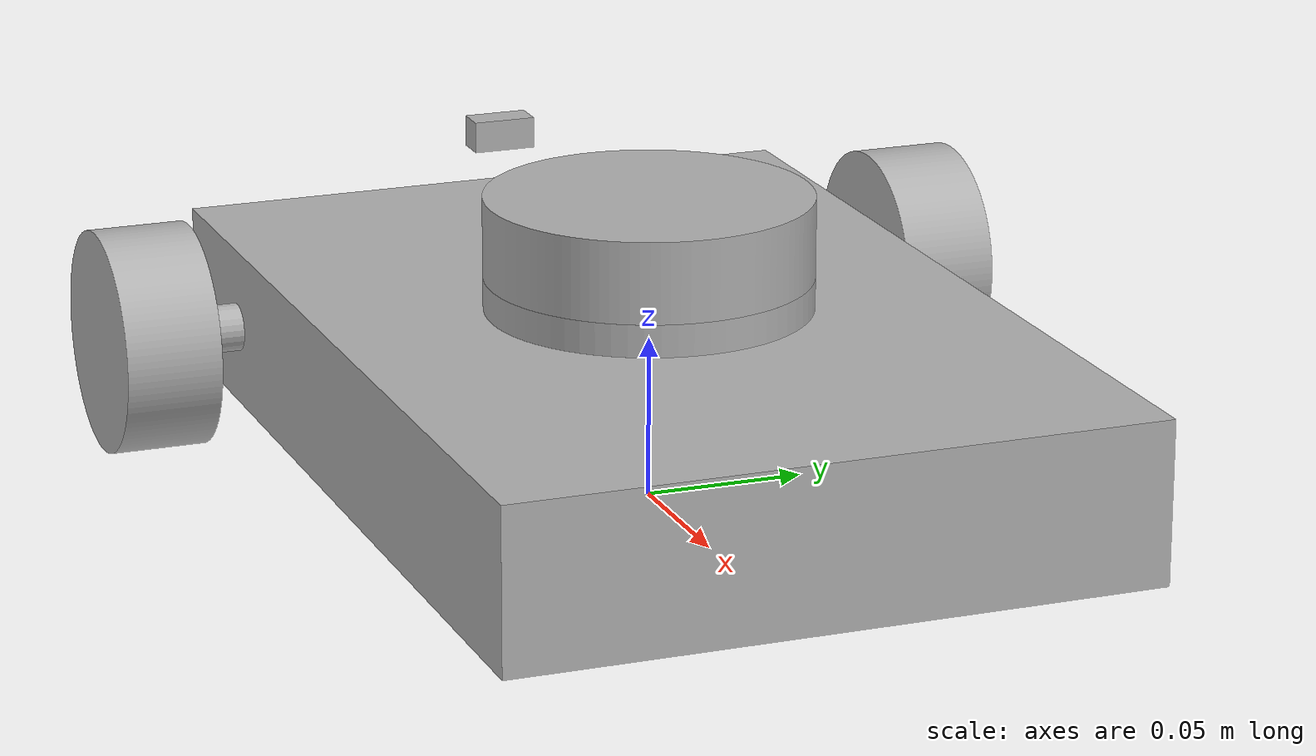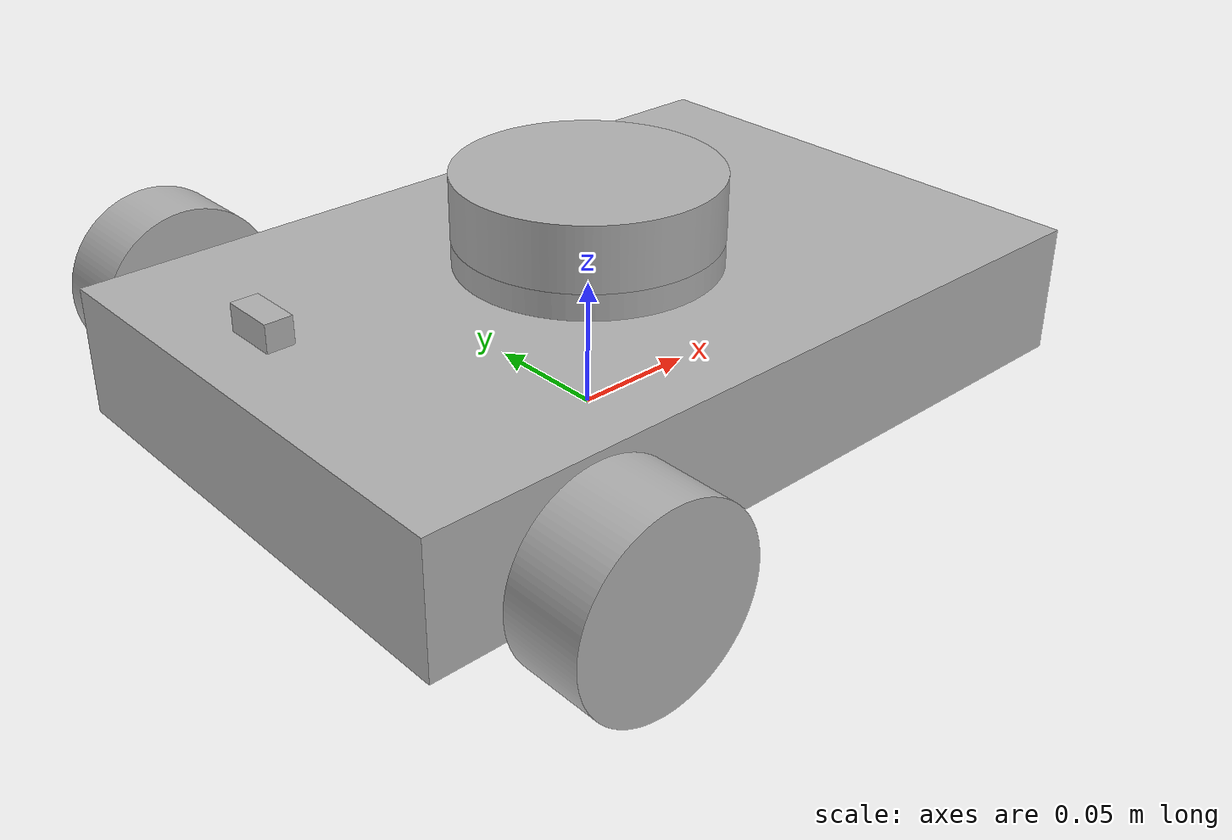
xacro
<?xml version="1.0" ?>
<robot name="differential_robot" xmlns:xacro="http://www.ros.org/wiki/xacro">

<xacro:include filename="$(find differential_robot_description)/urdf/materials.xacro" />
<xacro:include filename="$(find differential_robot_description)/urdf/differential_robot.trans" />
<xacro:include filename="$(find differential_robot_description)/urdf/differential_robot.gazebo" />
<link name="base_link">
  <inertial>
    <origin xyz="-0.00022908232525586226 2.3580301423313124e-17 0.03576360775085303" rpy="0 0 0"/>
    <mass value="24.22202593851102"/>
    <inertia ixx="0.085012" iyy="0.183018" izz="0.257123" ixy="0.0" iyz="0.0" ixz="-4e-06"/>
  </inertial>
  <visual>
    <origin xyz="0 0 0" rpy="0 0 0"/>
    <geometry>
      <mesh filename="file://$(find differential_robot_description)/meshes/base_link.stl" scale="0.001 0.001 0.001"/>
    </geometry>
    <material name="silver"/>
  </visual>
  <collision>
    <origin xyz="0 0 0" rpy="0 0 0"/>
    <geometry>
      <mesh filename="file://$(find differential_robot_description)/meshes/base_link.stl" scale="0.001 0.001 0.001"/>
    </geometry>
  </collision>
</link>

<link name="Lidar_1">
  <inertial>
    <origin xyz="-5.790023100122029e-18 5.790023100122029e-18 0.012499999999999997" rpy="0 0 0"/>
    <mass value="1.541343895667492"/>
    <inertia ixx="0.001044" iyy="0.001044" izz="0.001927" ixy="-0.0" iyz="0.0" ixz="-0.0"/>
  </inertial>
  <visual>
    <origin xyz="-0.0 -0.0 -0.07" rpy="0 0 0"/>
    <geometry>
      <mesh filename="file://$(find differential_robot_description)/meshes/Lidar_1.stl" scale="0.001 0.001 0.001"/>
    </geometry>
    <material name="silver"/>
  </visual>
  <collision>
    <origin xyz="-0.0 -0.0 -0.07" rpy="0 0 0"/>
    <geometry>
      <mesh filename="file://$(find differential_robot_description)/meshes/Lidar_1.stl" scale="0.001 0.001 0.001"/>
    </geometry>
  </collision>
</link>

<link name="caster_wheel_1">
  <inertial>
    <origin xyz="0.08999999999999997 -1.1795831361170316e-17 -0.0037098385304082365" rpy="0 0 0"/>
    <mass value="0.0591073268273161"/>
    <inertia ixx="5e-06" iyy="5e-06" izz="9e-06" ixy="0.0" iyz="0.0" ixz="0.0"/>
  </inertial>
  <visual>
    <origin xyz="-0.0 -0.0 -0.01" rpy="0 0 0"/>
    <geometry>
      <mesh filename="file://$(find differential_robot_description)/meshes/caster_wheel_1.stl" scale="0.001 0.001 0.001"/>
    </geometry>
    <material name="silver"/>
  </visual>
  <collision>
    <origin xyz="-0.0 -0.0 -0.01" rpy="0 0 0"/>
    <geometry>
      <mesh filename="file://$(find differential_robot_description)/meshes/caster_wheel_1.stl" scale="0.001 0.001 0.001"/>
    </geometry>
  </collision>
</link>

<link name="right_wheel_1">
  <inertial>
    <origin xyz="0.0 -0.015000000000000013 -1.3877787807814457e-17" rpy="0 0 0"/>
    <mass value="0.9063102106524855"/>
    <inertia ixx="0.000346" iyy="0.000555" izz="0.000346" ixy="0.0" iyz="-0.0" ixz="-0.0"/>
  </inertial>
  <visual>
    <origin xyz="0.1 0.12 -0.035" rpy="0 0 0"/>
    <geometry>
      <mesh filename="file://$(find differential_robot_description)/meshes/right_wheel_1.stl" scale="0.001 0.001 0.001"/>
    </geometry>
    <material name="silver"/>
  </visual>
  <collision>
    <origin xyz="0.1 0.12 -0.035" rpy="0 0 0"/>
    <geometry>
      <mesh filename="file://$(find differential_robot_description)/meshes/right_wheel_1.stl" scale="0.001 0.001 0.001"/>
    </geometry>
  </collision>
</link>

<link name="left_wheel_1">
  <inertial>
    <origin xyz="0.0 0.015000000000000013 -1.3877787807814457e-17" rpy="0 0 0"/>
    <mass value="0.9063102106524855"/>
    <inertia ixx="0.000346" iyy="0.000555" izz="0.000346" ixy="-0.0" iyz="0.0" ixz="-0.0"/>
  </inertial>
  <visual>
    <origin xyz="0.1 -0.12 -0.035" rpy="0 0 0"/>
    <geometry>
      <mesh filename="file://$(find differential_robot_description)/meshes/left_wheel_1.stl" scale="0.001 0.001 0.001"/>
    </geometry>
    <material name="silver"/>
  </visual>
  <collision>
    <origin xyz="0.1 -0.12 -0.035" rpy="0 0 0"/>
    <geometry>
      <mesh filename="file://$(find differential_robot_description)/meshes/left_wheel_1.stl" scale="0.001 0.001 0.001"/>
    </geometry>
  </collision>
</link>

<link name="camera">
  <inertial>
    <origin xyz="-0.010000000000000092 4.519363186134586e-18 0.0040000000000000036" rpy="0 0 0"/>
    <mass value="0.006279999999999998"/>
    <inertia ixx="0.0" iyy="0.0" izz="0.0" ixy="-0.0" iyz="-0.0" ixz="0.0"/>
  </inertial>
  <visual>
    <origin xyz="-0.15 -0.0 -0.06" rpy="0 0 0"/>
    <geometry>
      <mesh filename="file://$(find differential_robot_description)/meshes/camera_1.stl" scale="0.001 0.001 0.001"/>
    </geometry>
    <material name="silver"/>
  </visual>
  <collision>
    <origin xyz="-0.15 -0.0 -0.06" rpy="0 0 0"/>
    <geometry>
      <mesh filename="file://$(find differential_robot_description)/meshes/camera_1.stl" scale="0.001 0.001 0.001"/>
    </geometry>
  </collision>
</link>

<joint name="lidar_joint" type="fixed">
  <origin xyz="0.0 0.0 0.07" rpy="0 0 0"/>
  <parent link="base_link"/>
  <child link="Lidar_1"/>
</joint>

<joint name="caster_joint" type="fixed">
  <origin xyz="0.0 0.0 0.01" rpy="0 0 0"/>
  <parent link="base_link"/>
  <child link="caster_wheel_1"/>
</joint>

<joint name="rightwheel_joint" type="continuous">
  <origin xyz="-0.1 -0.12 0.035" rpy="0 0 0"/>
  <parent link="base_link"/>
  <child link="right_wheel_1"/>
  <axis xyz="0.0 1.0 0.0"/>
</joint>

<joint name="leftwheel_joint" type="continuous">
  <origin xyz="-0.1 0.12 0.035" rpy="0 0 0"/>
  <parent link="base_link"/>
  <child link="left_wheel_1"/>
  <axis xyz="0.0 1.0 0.0"/>
</joint>

<joint name="camera_joint" type="fixed">
  <origin xyz="0.15 0.0 0.06" rpy="0 0 0"/>
  <parent link="base_link"/>
  <child link="camera"/>
</joint>

</robot>

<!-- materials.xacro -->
<robot name="differential_robot" xmlns:xacro="http://www.ros.org/wiki/xacro" >

<material name="silver">
  <color rgba="0.700 0.700 0.700 1.000"/>
</material>

</robot>

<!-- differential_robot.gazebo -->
<robot name="differential_robot" xmlns:xacro="http://www.ros.org/wiki/xacro" >

<xacro:property name="body_color" value="Gazebo/Silver" />

<gazebo>
  <plugin name="control" filename="libgazebo_ros_control.so"/>
  <plugin name="gazebo_ros_factory" filename="libgazebo_ros_factory.so"/>

</gazebo>
<gazebo reference="base_link">
  <material>${body_color}</material>
  <mu1>0.2</mu1>
  <mu2>0.2</mu2>
  <self_collide>true</self_collide>
  <gravity>true</gravity>
</gazebo>

<gazebo reference="Lidar_1">
  <material>${body_color}</material>
  <mu1>0.2</mu1>
  <mu2>0.2</mu2>
  <self_collide>true</self_collide>
</gazebo>

<gazebo reference="caster_wheel_1">
  <material>${body_color}</material>
  <mu1>0.2</mu1>
  <mu2>0.2</mu2>
  <self_collide>true</self_collide>
</gazebo>

<gazebo reference="right_wheel_1">
  <material>${body_color}</material>
  <mu1>0.2</mu1>
  <mu2>0.2</mu2>
  <self_collide>true</self_collide>
</gazebo>

<gazebo reference="left_wheel_1">
  <material>${body_color}</material>
  <mu1>0.2</mu1>
  <mu2>0.2</mu2>
  <self_collide>true</self_collide>
</gazebo>

<gazebo reference="camera_1">
  <material>${body_color}</material>
  <mu1>0.2</mu1>
  <mu2>0.2</mu2>
  <self_collide>true</self_collide>
</gazebo>

<!-- Differential drive plugin for gazebo -->
<gazebo>
<plugin name='diff_drive' filename='libgazebo_ros_diff_drive.so'>
	<ros>
	</ros>

		<!-- wheels -->
	<left_joint>leftwheel_joint</left_joint>
	<right_joint>rightwheel_joint</right_joint>

		<!-- kinematics -->
	<wheel_separation>0.23</wheel_separation>
	<wheel_diameter>0.07</wheel_diameter>

		<!-- limits -->
	<max_wheel_torque>20</max_wheel_torque>
	<max_wheel_acceleration>1.0</max_wheel_acceleration>

		<!-- output -->
	<publish_odom>true</publish_odom>
	<publish_odom_tf>true</publish_odom_tf>
	<publish_wheel_tf>false</publish_wheel_tf>

	<odometry_frame>odom</odometry_frame>
	<robot_base_frame>base_link</robot_base_frame>
</plugin>
</gazebo>

<gazebo reference="Lidar_1">
	<sensor name="ydlidar" type="ray">
		<always_on>true</always_on>
		<visualize>false</visualize>
		<update_rate>10</update_rate>
		<ray>
		<scan>
			<horizontal>
			<samples>720</samples>
			<resolution>1.000000</resolution>
			<min_angle>-3.14</min_angle>
			<max_angle>3.14</max_angle>
			</horizontal>
		</scan>
		<range>
			<min>0.05</min>
			<max>20.0</max>
			<resolution>0.015000</resolution>
		</range>
		<noise>
			<type>gaussian</type>
			<mean>0.0</mean>
			<stddev>0.01</stddev>
		</noise>
		</ray>
		<plugin name="scan" filename="libgazebo_ros_ray_sensor.so">
		<ros>
			<remapping>~/out:=scan</remapping>
		</ros>
		<output_type>sensor_msgs/LaserScan</output_type>
		<frame_name>Lidar_1</frame_name>
		</plugin>
	</sensor>
	</gazebo>

<gazebo reference="camera">
    <sensor type="camera" name="camera">
      <update_rate>30.0</update_rate>
      <camera name="head">
        <horizontal_fov>1.3962634</horizontal_fov>
        <image>
          <width>800</width>
          <height>800</height>
          <format>R8G8B8</format>
        </image>
        <clip>
          <near>0.02</near>
          <far>300</far>
        </clip>
        <noise>
          <type>gaussian</type>
          <!-- Noise is sampled independently per pixel on each frame.
               That pixel's noise value is added to each of its color
               channels, which at that point lie in the range [0,1]. -->
          <mean>0.0</mean>
          <stddev>0.007</stddev>
        </noise>
      </camera>
      <plugin name="camera_controller" filename="libgazebo_ros_camera.so">
        <alwaysOn>true</alwaysOn>
        <updateRate>0.0</updateRate>
        <cameraName>camera</cameraName>
        <imageTopicName>image_raw</imageTopicName>
        <cameraInfoTopicName>camera_info</cameraInfoTopicName>
        <frameName>camera_frame</frameName>
        <hackBaseline>0.07</hackBaseline>
        <distortionK1>0.0</distortionK1>
        <distortionK2>0.0</distortionK2>
        <distortionK3>0.0</distortionK3>
        <distortionT1>0.0</distortionT1>
        <distortionT2>0.0</distortionT2>
      </plugin>
    </sensor>
</gazebo>

</robot>
